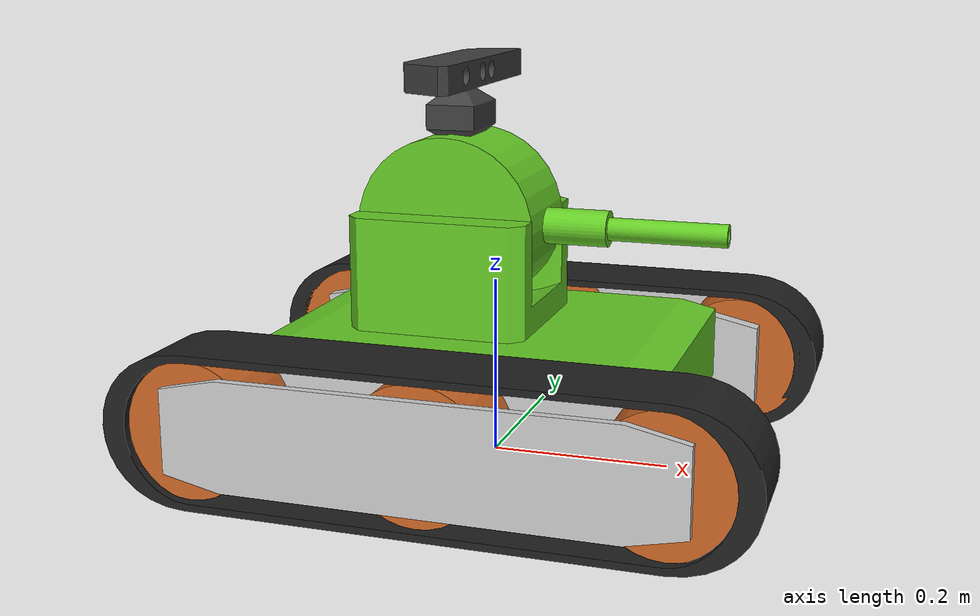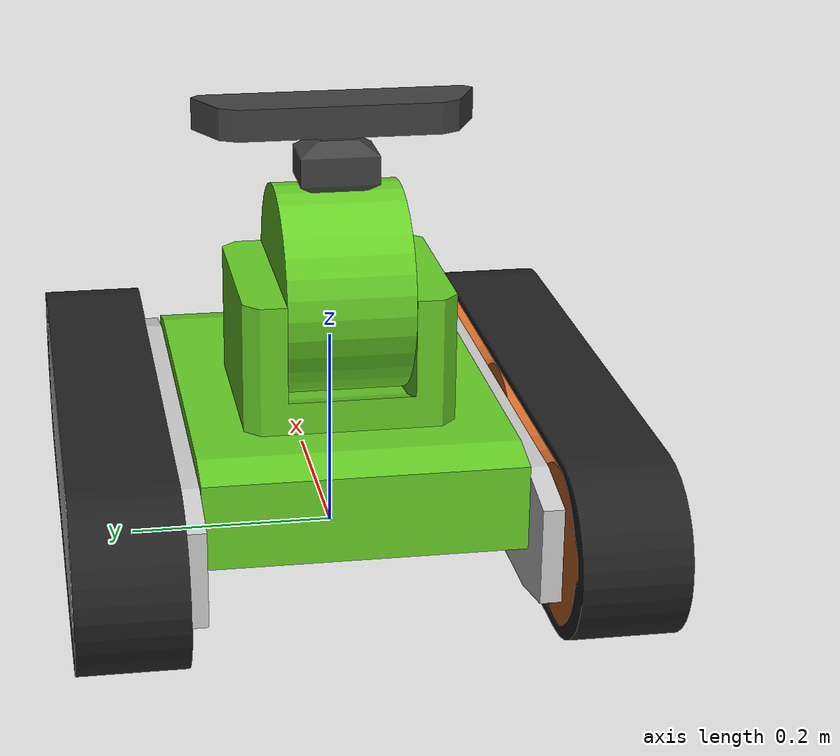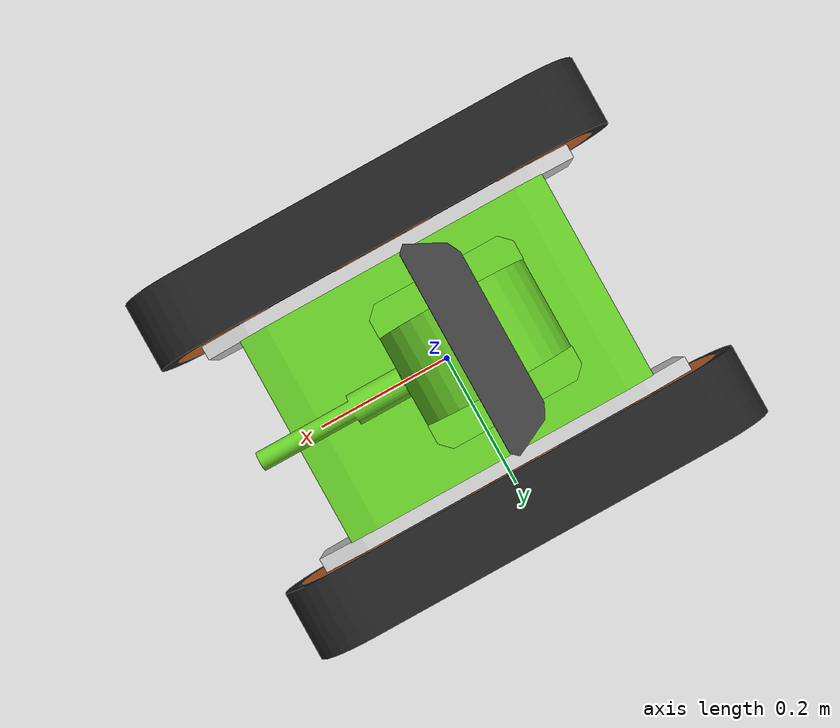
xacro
<?xml version="1.0"?>
<robot name="tank" xmlns:xacro="http://ros.org/wiki/xacro">

  <xacro:include filename="$(find cnoid_tank_description)/urdf/cnoid_tank_basic.urdf.xacro"/>

  <link name="Kinect_base">
    <visual>
      <geometry>
        <mesh filename="package://cnoid_tank_description/meshes/KINECT.dae"/>
      </geometry>
    </visual>
    <collision>
      <geometry>
        <mesh filename="package://cnoid_tank_description/meshes/KINECT.dae"/>
      </geometry>
    </collision>
  </link>
  <joint name="Kinect_base" type="fixed">
    <origin xyz="0 0 0.1205"/>
    <parent link="TURRET_P"/>
    <child link ="Kinect_base"/>
  </joint>

  <link name="Kinect"/>
  <joint name="Kinect" type="fixed">
    <origin rpy="${M_PI/2} 0 ${-M_PI/2}"/>
    <parent link="Kinect_base"/>
    <child link="Kinect"/>
  </joint>

  <link name="VLP-16_base"/>
  <joint name="VLP-16_base" type="fixed">
    <origin xyz="0 0 0.225"/>
    <parent link="TURRET_P"/>
    <child link="VLP-16_base"/>
  </joint>
  <link name="VLP-16"/>
  <joint name="VLP-16" type="fixed">
    <origin rpy="${M_PI/2} 0 ${-M_PI/2}"/>
    <parent link="VLP-16_base"/>
    <child link="VLP-16"/>
  </joint>

</robot>

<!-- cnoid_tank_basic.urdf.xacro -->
<robot name="tank" xmlns:xacro="http://ros.org/wiki/xacro">

  <xacro:include filename="$(find cnoid_tank_description)/urdf/torso.urdf.xacro"/>
  <xacro:include filename="$(find cnoid_tank_description)/urdf/track.urdf.xacro"/>
  <xacro:include filename="$(find cnoid_tank_description)/urdf/common.xacro"/>

  <link name="base_footprint"/>
  <!-- Torso -->
  <xacro:cnoid_tank_torso parent="base_footprint">
    <origin xyz="0 0 0.1059"/>
  </xacro:cnoid_tank_torso>

  <!-- TRACK -->
  <xacro:cnoid_tank_track suffix="L" side="1.0"/>
  <xacro:cnoid_tank_track suffix="R" side="-1.0"/>

  <!-- Transmission -->
  <xacro:joint_effort_trans_v0 name="TURRET_Y"/>
  <xacro:joint_effort_trans_v0 name="TURRET_P"/>
  <xacro:joint_velocity_trans_v0 name="TRACK_L"/>
  <xacro:joint_velocity_trans_v0 name="TRACK_R"/>
</robot>

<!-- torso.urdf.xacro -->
<robot xmlns:xacro="http://ros.org/wiki/xacro">

  <xacro:include filename="$(find cnoid_tank_description)/urdf/common.xacro"/>

  <xacro:macro name="cnoid_tank_torso" params="parent *origin">
    <link name="base_link"/>
    <joint name="base_link" type="fixed">
      <xacro:insert_block name="origin"/>
      <parent link="${parent}"/>
      <child link="base_link"/>
    </joint>

    <link name="CHASSIS">
      <visual>
        <geometry>
          <mesh filename="package://cnoid_tank_description/meshes/CHASSIS.dae"/>
        </geometry>
      </visual>
      <collision>
        <geometry>
          <mesh filename="package://cnoid_tank_description/meshes/CHASSIS.dae"/>
        </geometry>
      </collision>
      <inertial>
        <mass value="8.0"/>
        <inertia
            ixx="0.1" ixy="0.0" ixz="0.0"
            iyy="0.1" iyz="0.0" izz ="0.5"/>
      </inertial>
    </link>
    <joint name="CHASSIS" type="fixed">
      <origin xyz="0 0 0"/>
      <parent link="base_link"/>
      <child link="CHASSIS"/>
    </joint>

    <link name="TURRET_Y">
      <visual>
        <geometry>
          <mesh filename="package://cnoid_tank_description/meshes/TURRET_Y.dae"/>
        </geometry>
      </visual>
      <collision>
        <geometry>
          <mesh filename="package://cnoid_tank_description/meshes/TURRET_Y.dae"/>
        </geometry>
      </collision>
      <inertial>
        <origin xyz="0 0 0.025"/>
        <mass value="4.0"/>
        <inertia
            ixx="0.1" ixy="0.0" ixz="0.0"
            iyy="0.1" iyz="0.0" izz ="0.1"/>
      </inertial>
    </link>
    <joint name="TURRET_Y" type="continuous">
      <origin xyz="-0.04 0 0.1125"/>
      <axis xyz="0 0 -1"/>
      <parent link="CHASSIS"/>
      <child link="TURRET_Y"/>
      <limit effort="30" velocity="${90/180*M_PI}"/>
    </joint>

    <link name="TURRET_P">
      <visual>
        <geometry>
          <mesh filename="package://cnoid_tank_description/meshes/TURRET_P.dae"/>
        </geometry>
      </visual>
      <collision>
        <geometry>
          <mesh filename="package://cnoid_tank_description/meshes/TURRET_P.dae"/>
        </geometry>
      </collision>
    </link>
    <joint name="TURRET_P" type="revolute">
      <origin xyz="0 0 0.0475"/>
      <axis xyz="0 -1 0"/>
      <parent link="TURRET_Y"/>
      <child link="TURRET_P"/>
      <limit effort="30" velocity="${90/180*M_PI}" lower="${-10/180*M_PI}" upper="${45/180*M_PI}" />
    </joint>
  </xacro:macro>
</robot>

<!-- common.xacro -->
<robot xmlns:xacro="http://ros.org/wiki/xacro">
  <xacro:property name="M_PI" value="3.14159274"/>

  <xacro:macro name="cylinder_inertial" params="mass radius length">
	<mass value="${mass}"/>
	<inertia ixx="${((radius*radius)/4 + (length*length)/12)*mass}" ixy="0" ixz="0"
			 iyy="${((radius*radius)/4 + (length*length)/12)*mass}" iyz="0"
			 izz="${(mass*radius*radius)/2}" />
  </xacro:macro>

  <xacro:macro name="box_inertial" params="mass height width depth">
	<mass value="${mass}"/>
	<inertia ixx="${(mass*(width*width+depth*depth))/12}" ixy="0" ixz="0"
			 iyy="${(mass*(height*height+depth*depth))/12}" iyz="0"
			 izz="${(mass*(height*height+width*width))/12}" />
  </xacro:macro>

  <xacro:macro name="joint_position_trans_v0" params="name">
	<transmission name="${name}_trans">
      <type>transmission_interface/SimpleTransmission</type>
      <joint name="${name}">
		<hardwareInterface>PositionJointInterface</hardwareInterface>
      </joint>
	  <actuator name="${name}_motor">
		<hardwareInterface>PositionJointInterface</hardwareInterface>
      </actuator>
	</transmission>
  </xacro:macro>
  <xacro:macro name="joint_velocity_trans_v0" params="name">
	<transmission name="${name}_trans">
      <type>transmission_interface/SimpleTransmission</type>
      <joint name="${name}">
		<hardwareInterface>VelocityJointInterface</hardwareInterface>
      </joint>
	  <actuator name="${name}_motor">
		<hardwareInterface>VelocityJointInterface</hardwareInterface>
      </actuator>
	</transmission>
  </xacro:macro>
  <xacro:macro name="joint_effort_trans_v0" params="name">
	<transmission name="${name}_trans">
      <type>transmission_interface/SimpleTransmission</type>
      <joint name="${name}">
		<hardwareInterface>EffortJointInterface</hardwareInterface>
      </joint>
	  <actuator name="${name}_motor">
		<hardwareInterface>EffortJointInterface</hardwareInterface>
      </actuator>
	</transmission>
  </xacro:macro>
</robot>

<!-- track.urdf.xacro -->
<robot xmlns:xacro="http://ros.org/wiki/xacro">

  <xacro:include filename="$(find cnoid_tank_description)/urdf/common.xacro"/>

  <xacro:macro name="cnoid_tank_track" params="suffix side">
    <link name="TRACK_${suffix}"/>
    <joint name="TRACK_${suffix}" type="continuous">
      <axis xyz="0 ${side} 0"/>
      <origin xyz="0 ${side * 0.22} -0.026"/>
      <parent link="CHASSIS"/>
      <child link="TRACK_${suffix}"/>
    </joint>
    <link name="BELT_${suffix}">
      <visual>
        <geometry>
          <mesh filename="package://cnoid_tank_description/meshes/TRACK_${suffix}.dae"/>
        </geometry>
      </visual>
      <collision>
        <geometry>
          <mesh filename="package://cnoid_tank_description/meshes/TRACK_${suffix}.dae"/>
        </geometry>
      </collision>
    </link>
    <joint name="BELT_${suffix}" type="fixed">
      <origin xyz="0 ${side * 0.22} -0.026"/>
      <parent link="CHASSIS"/>
      <child link="BELT_${suffix}"/>
    </joint>

    <link name="WHEEL_${suffix}0">
      <visual>
        <geometry>
          <mesh filename="package://cnoid_tank_description/meshes/WHEEL.dae"/>
        </geometry>
      </visual>
      <collision>
        <geometry>
          <mesh filename="package://cnoid_tank_description/meshes/WHEEL.dae"/>
        </geometry>
      </collision>
    </link>
    <joint name="WHEEL_${suffix}0" type="fixed">
      <origin xyz="0.25 ${side * -0.005} 0"/>
      <parent link="BELT_${suffix}"/>
      <child link="WHEEL_${suffix}0"/>
    </joint>

    <link name="WHEEL_${suffix}1">
      <visual>
        <geometry>
          <mesh filename="package://cnoid_tank_description/meshes/WHEEL.dae"/>
        </geometry>
      </visual>
      <collision>
        <geometry>
          <mesh filename="package://cnoid_tank_description/meshes/WHEEL.dae"/>
        </geometry>
      </collision>
    </link>
    <joint name="WHEEL_${suffix}1" type="fixed">
      <origin xyz="0 ${side * -0.005} 0"/>
      <parent link="BELT_${suffix}"/>
      <child link="WHEEL_${suffix}1"/>
    </joint>

    <link name="WHEEL_${suffix}2">
      <visual>
        <geometry>
          <mesh filename="package://cnoid_tank_description/meshes/WHEEL.dae"/>
        </geometry>
      </visual>
      <collision>
        <geometry>
          <mesh filename="package://cnoid_tank_description/meshes/WHEEL.dae"/>
        </geometry>
      </collision>
    </link>
    <joint name="WHEEL_${suffix}2" type="fixed">
      <origin xyz="-0.25 ${side * -0.005} 0"/>
      <parent link="BELT_${suffix}"/>
      <child link="WHEEL_${suffix}2"/>
    </joint>
  </xacro:macro>
</robot>
